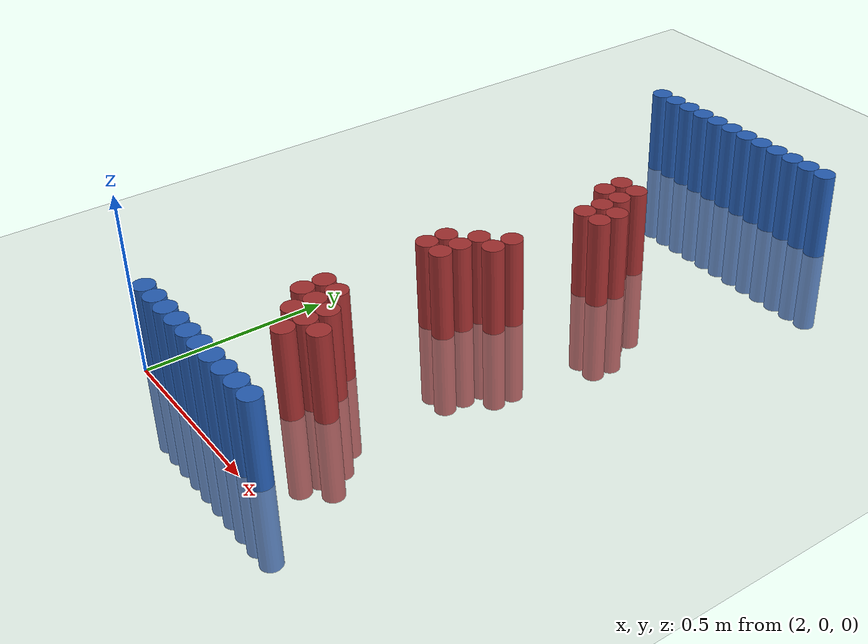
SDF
<sdf version="1.6">
 <world name="default">
  <model name="ground_plane">
   <static>1</static>
   <link name="link">
    <collision name="collision">
     <geometry><plane><normal>0 0 1</normal><size>100 100</size></plane></geometry>
     <surface><friction><ode><mu>100</mu><mu2>50</mu2></ode></friction></surface>
    </collision>
    <visual name="visual">
     <cast_shadows>0</cast_shadows>
     <geometry><plane><normal>0 0 1</normal><size>100 100</size></plane></geometry>
     <material>
      <script><uri>file://media/materials/scripts/gazebo.material</uri><name>Gazebo/Grey</name></script>
     </material>
    </visual>
   </link>
  </model>
  <model name="unit_cylinder_92">
   <static>1</static>
   <pose>1.950000 1.770000 0.000000 0.000000 0.000000 0.000000</pose>
   <link name="link">
    <inertial>
     <mass>1</mass>
     <inertia><ixx>0.145833</ixx><ixy>0</ixy><ixz>0</ixz><iyy>0.145833</iyy><iyz>0</iyz><izz>0.125</izz></inertia>
    </inertial>
    <collision name="collision">
     <geometry><cylinder><radius>0.030000</radius><length>0.5</length></cylinder></geometry>
    </collision>
    <visual name="visual">
     <geometry><cylinder><radius>0.030000</radius><length>0.5</length></cylinder></geometry>
     <material>
      <ambient>0.152000 0.379000 0.720000 1</ambient>
      <diffuse>0.152000 0.379000 0.720000 1</diffuse>
     </material>
     <material>
      <script><name>Gazebo/Grey</name><uri>file://media/materials/scripts/gazebo.material</uri></script>
     </material>
    </visual>
   </link>
  </model>
  <model name="unit_cylinder_93">
   <static>1</static>
   <pose>2.010000 0.030000 0.000000 0.000000 0.000000 0.000000</pose>
   <link name="link">
    <inertial>
     <mass>1</mass>
     <inertia><ixx>0.145833</ixx><ixy>0</ixy><ixz>0</ixz><iyy>0.145833</iyy><iyz>0</iyz><izz>0.125</izz></inertia>
    </inertial>
    <collision name="collision">
     <geometry><cylinder><radius>0.030000</radius><length>0.5</length></cylinder></geometry>
    </collision>
    <visual name="visual">
     <geometry><cylinder><radius>0.030000</radius><length>0.5</length></cylinder></geometry>
     <material>
      <ambient>0.152000 0.379000 0.720000 1</ambient>
      <diffuse>0.152000 0.379000 0.720000 1</diffuse>
     </material>
     <material>
      <script><name>Gazebo/Grey</name><uri>file://media/materials/scripts/gazebo.material</uri></script>
     </material>
    </visual>
   </link>
  </model>
  <model name="unit_cylinder_94">
   <static>1</static>
   <pose>2.010000 1.770000 0.000000 0.000000 0.000000 0.000000</pose>
   <link name="link">
    <inertial>
     <mass>1</mass>
     <inertia><ixx>0.145833</ixx><ixy>0</ixy><ixz>0</ixz><iyy>0.145833</iyy><iyz>0</iyz><izz>0.125</izz></inertia>
    </inertial>
    <collision name="collision">
     <geometry><cylinder><radius>0.030000</radius><length>0.5</length></cylinder></geometry>
    </collision>
    <visual name="visual">
     <geometry><cylinder><radius>0.030000</radius><length>0.5</length></cylinder></geometry>
     <material>
      <ambient>0.152000 0.379000 0.720000 1</ambient>
      <diffuse>0.152000 0.379000 0.720000 1</diffuse>
     </material>
     <material>
      <script><name>Gazebo/Grey</name><uri>file://media/materials/scripts/gazebo.material</uri></script>
     </material>
    </visual>
   </link>
  </model>
  <model name="unit_cylinder_95">
   <static>1</static>
   <pose>2.070000 1.770000 0.000000 0.000000 0.000000 0.000000</pose>
   <link name="link">
    <inertial>
     <mass>1</mass>
     <inertia><ixx>0.145833</ixx><ixy>0</ixy><ixz>0</ixz><iyy>0.145833</iyy><iyz>0</iyz><izz>0.125</izz></inertia>
    </inertial>
    <collision name="collision">
     <geometry><cylinder><radius>0.030000</radius><length>0.5</length></cylinder></geometry>
    </collision>
    <visual name="visual">
     <geometry><cylinder><radius>0.030000</radius><length>0.5</length></cylinder></geometry>
     <material>
      <ambient>0.152000 0.379000 0.720000 1</ambient>
      <diffuse>0.152000 0.379000 0.720000 1</diffuse>
     </material>
     <material>
      <script><name>Gazebo/Grey</name><uri>file://media/materials/scripts/gazebo.material</uri></script>
     </material>
    </visual>
   </link>
  </model>
  <model name="unit_cylinder_96">
   <static>1</static>
   <pose>2.130000 1.770000 0.000000 0.000000 0.000000 0.000000</pose>
   <link name="link">
    <inertial>
     <mass>1</mass>
     <inertia><ixx>0.145833</ixx><ixy>0</ixy><ixz>0</ixz><iyy>0.145833</iyy><iyz>0</iyz><izz>0.125</izz></inertia>
    </inertial>
    <collision name="collision">
     <geometry><cylinder><radius>0.030000</radius><length>0.5</length></cylinder></geometry>
    </collision>
    <visual name="visual">
     <geometry><cylinder><radius>0.030000</radius><length>0.5</length></cylinder></geometry>
     <material>
      <ambient>0.152000 0.379000 0.720000 1</ambient>
      <diffuse>0.152000 0.379000 0.720000 1</diffuse>
     </material>
     <material>
      <script><name>Gazebo/Grey</name><uri>file://media/materials/scripts/gazebo.material</uri></script>
     </material>
    </visual>
   </link>
  </model>
  <model name="unit_cylinder_97">
   <static>1</static>
   <pose>2.190000 1.770000 0.000000 0.000000 0.000000 0.000000</pose>
   <link name="link">
    <inertial>
     <mass>1</mass>
     <inertia><ixx>0.145833</ixx><ixy>0</ixy><ixz>0</ixz><iyy>0.145833</iyy><iyz>0</iyz><izz>0.125</izz></inertia>
    </inertial>
    <collision name="collision">
     <geometry><cylinder><radius>0.030000</radius><length>0.5</length></cylinder></geometry>
    </collision>
    <visual name="visual">
     <geometry><cylinder><radius>0.030000</radius><length>0.5</length></cylinder></geometry>
     <material>
      <ambient>0.152000 0.379000 0.720000 1</ambient>
      <diffuse>0.152000 0.379000 0.720000 1</diffuse>
     </material>
     <material>
      <script><name>Gazebo/Grey</name><uri>file://media/materials/scripts/gazebo.material</uri></script>
     </material>
    </visual>
   </link>
  </model>
  <model name="unit_cylinder_98">
   <static>1</static>
   <pose>2.250000 1.770000 0.000000 0.000000 0.000000 0.000000</pose>
   <link name="link">
    <inertial>
     <mass>1</mass>
     <inertia><ixx>0.145833</ixx><ixy>0</ixy><ixz>0</ixz><iyy>0.145833</iyy><iyz>0</iyz><izz>0.125</izz></inertia>
    </inertial>
    <collision name="collision">
     <geometry><cylinder><radius>0.030000</radius><length>0.5</length></cylinder></geometry>
    </collision>
    <visual name="visual">
     <geometry><cylinder><radius>0.030000</radius><length>0.5</length></cylinder></geometry>
     <material>
      <ambient>0.152000 0.379000 0.720000 1</ambient>
      <diffuse>0.152000 0.379000 0.720000 1</diffuse>
     </material>
     <material>
      <script><name>Gazebo/Grey</name><uri>file://media/materials/scripts/gazebo.material</uri></script>
     </material>
    </visual>
   </link>
  </model>
  <model name="unit_cylinder_99">
   <static>1</static>
   <pose>2.310000 1.770000 0.000000 0.000000 0.000000 0.000000</pose>
   <link name="link">
    <inertial>
     <mass>1</mass>
     <inertia><ixx>0.145833</ixx><ixy>0</ixy><ixz>0</ixz><iyy>0.145833</iyy><iyz>0</iyz><izz>0.125</izz></inertia>
    </inertial>
    <collision name="collision">
     <geometry><cylinder><radius>0.030000</radius><length>0.5</length></cylinder></geometry>
    </collision>
    <visual name="visual">
     <geometry><cylinder><radius>0.030000</radius><length>0.5</length></cylinder></geometry>
     <material>
      <ambient>0.152000 0.379000 0.720000 1</ambient>
      <diffuse>0.152000 0.379000 0.720000 1</diffuse>
     </material>
     <material>
      <script><name>Gazebo/Grey</name><uri>file://media/materials/scripts/gazebo.material</uri></script>
     </material>
    </visual>
   </link>
  </model>
  <model name="unit_cylinder_100">
   <static>1</static>
   <pose>2.370000 1.770000 0.000000 0.000000 0.000000 0.000000</pose>
   <link name="link">
    <inertial>
     <mass>1</mass>
     <inertia><ixx>0.145833</ixx><ixy>0</ixy><ixz>0</ixz><iyy>0.145833</iyy><iyz>0</iyz><izz>0.125</izz></inertia>
    </inertial>
    <collision name="collision">
     <geometry><cylinder><radius>0.030000</radius><length>0.5</length></cylinder></geometry>
    </collision>
    <visual name="visual">
     <geometry><cylinder><radius>0.030000</radius><length>0.5</length></cylinder></geometry>
     <material>
      <ambient>0.152000 0.379000 0.720000 1</ambient>
      <diffuse>0.152000 0.379000 0.720000 1</diffuse>
     </material>
     <material>
      <script><name>Gazebo/Grey</name><uri>file://media/materials/scripts/gazebo.material</uri></script>
     </material>
    </visual>
   </link>
  </model>
  <model name="unit_cylinder_101">
   <static>1</static>
   <pose>2.430000 1.770000 0.000000 0.000000 0.000000 0.000000</pose>
   <link name="link">
    <inertial>
     <mass>1</mass>
     <inertia><ixx>0.145833</ixx><ixy>0</ixy><ixz>0</ixz><iyy>0.145833</iyy><iyz>0</iyz><izz>0.125</izz></inertia>
    </inertial>
    <collision name="collision">
     <geometry><cylinder><radius>0.030000</radius><length>0.5</length></cylinder></geometry>
    </collision>
    <visual name="visual">
     <geometry><cylinder><radius>0.030000</radius><length>0.5</length></cylinder></geometry>
     <material>
      <ambient>0.152000 0.379000 0.720000 1</ambient>
      <diffuse>0.152000 0.379000 0.720000 1</diffuse>
     </material>
     <material>
      <script><name>Gazebo/Grey</name><uri>file://media/materials/scripts/gazebo.material</uri></script>
     </material>
    </visual>
   </link>
  </model>
  <model name="unit_cylinder_102">
   <static>1</static>
   <pose>2.490000 1.770000 0.000000 0.000000 0.000000 0.000000</pose>
   <link name="link">
    <inertial>
     <mass>1</mass>
     <inertia><ixx>0.145833</ixx><ixy>0</ixy><ixz>0</ixz><iyy>0.145833</iyy><iyz>0</iyz><izz>0.125</izz></inertia>
    </inertial>
    <collision name="collision">
     <geometry><cylinder><radius>0.030000</radius><length>0.5</length></cylinder></geometry>
    </collision>
    <visual name="visual">
     <geometry><cylinder><radius>0.030000</radius><length>0.5</length></cylinder></geometry>
     <material>
      <ambient>0.152000 0.379000 0.720000 1</ambient>
      <diffuse>0.152000 0.379000 0.720000 1</diffuse>
     </material>
     <material>
      <script><name>Gazebo/Grey</name><uri>file://media/materials/scripts/gazebo.material</uri></script>
     </material>
    </visual>
   </link>
  </model>
  <model name="unit_cylinder_103">
   <static>1</static>
   <pose>2.550000 1.770000 0.000000 0.000000 0.000000 0.000000</pose>
   <link name="link">
    <inertial>
     <mass>1</mass>
     <inertia><ixx>0.145833</ixx><ixy>0</ixy><ixz>0</ixz><iyy>0.145833</iyy><iyz>0</iyz><izz>0.125</izz></inertia>
    </inertial>
    <collision name="collision">
     <geometry><cylinder><radius>0.030000</radius><length>0.5</length></cylinder></geometry>
    </collision>
    <visual name="visual">
     <geometry><cylinder><radius>0.030000</radius><length>0.5</length></cylinder></geometry>
     <material>
      <ambient>0.152000 0.379000 0.720000 1</ambient>
      <diffuse>0.152000 0.379000 0.720000 1</diffuse>
     </material>
     <material>
      <script><name>Gazebo/Grey</name><uri>file://media/materials/scripts/gazebo.material</uri></script>
     </material>
    </visual>
   </link>
  </model>
  <model name="unit_cylinder_104">
   <static>1</static>
   <pose>2.610000 1.770000 0.000000 0.000000 0.000000 0.000000</pose>
   <link name="link">
    <inertial>
     <mass>1</mass>
     <inertia><ixx>0.145833</ixx><ixy>0</ixy><ixz>0</ixz><iyy>0.145833</iyy><iyz>0</iyz><izz>0.125</izz></inertia>
    </inertial>
    <collision name="collision">
     <geometry><cylinder><radius>0.030000</radius><length>0.5</length></cylinder></geometry>
    </collision>
    <visual name="visual">
     <geometry><cylinder><radius>0.030000</radius><length>0.5</length></cylinder></geometry>
     <material>
      <ambient>0.152000 0.379000 0.720000 1</ambient>
      <diffuse>0.152000 0.379000 0.720000 1</diffuse>
     </material>
     <material>
      <script><name>Gazebo/Grey</name><uri>file://media/materials/scripts/gazebo.material</uri></script>
     </material>
    </visual>
   </link>
  </model>
  <model name="unit_cylinder_134">
   <static>1</static>
   <pose>2.310000 1.290000 0.000000 0.000000 0.000000 0.000000</pose>
   <link name="link">
    <inertial>
     <mass>1</mass>
     <inertia><ixx>0.145833</ixx><ixy>0</ixy><ixz>0</ixz><iyy>0.145833</iyy><iyz>0</iyz><izz>0.125</izz></inertia>
    </inertial>
    <collision name="collision">
     <geometry><cylinder><radius>0.030000</radius><length>0.5</length></cylinder></geometry>
    </collision>
    <visual name="visual">
     <geometry><cylinder><radius>0.030000</radius><length>0.5</length></cylinder></geometry>
     <material>
      <ambient>0.648000 0.192000 0.192000 1</ambient>
      <diffuse>0.648000 0.192000 0.192000 1</diffuse>
     </material>
     <material>
      <script><name>Gazebo/Grey</name><uri>file://media/materials/scripts/gazebo.material</uri></script>
     </material>
    </visual>
   </link>
  </model>
  <model name="unit_cylinder_135">
   <static>1</static>
   <pose>2.370000 1.290000 0.000000 0.000000 0.000000 0.000000</pose>
   <link name="link">
    <inertial>
     <mass>1</mass>
     <inertia><ixx>0.145833</ixx><ixy>0</ixy><ixz>0</ixz><iyy>0.145833</iyy><iyz>0</iyz><izz>0.125</izz></inertia>
    </inertial>
    <collision name="collision">
     <geometry><cylinder><radius>0.030000</radius><length>0.5</length></cylinder></geometry>
    </collision>
    <visual name="visual">
     <geometry><cylinder><radius>0.030000</radius><length>0.5</length></cylinder></geometry>
     <material>
      <ambient>0.648000 0.192000 0.192000 1</ambient>
      <diffuse>0.648000 0.192000 0.192000 1</diffuse>
     </material>
     <material>
      <script><name>Gazebo/Grey</name><uri>file://media/materials/scripts/gazebo.material</uri></script>
     </material>
    </visual>
   </link>
  </model>
  <model name="unit_cylinder_136">
   <static>1</static>
   <pose>2.310000 1.230000 0.000000 0.000000 0.000000 0.000000</pose>
   <link name="link">
    <inertial>
     <mass>1</mass>
     <inertia><ixx>0.145833</ixx><ixy>0</ixy><ixz>0</ixz><iyy>0.145833</iyy><iyz>0</iyz><izz>0.125</izz></inertia>
    </inertial>
    <collision name="collision">
     <geometry><cylinder><radius>0.030000</radius><length>0.5</length></cylinder></geometry>
    </collision>
    <visual name="visual">
     <geometry><cylinder><radius>0.030000</radius><length>0.5</length></cylinder></geometry>
     <material>
      <ambient>0.648000 0.192000 0.192000 1</ambient>
      <diffuse>0.648000 0.192000 0.192000 1</diffuse>
     </material>
     <material>
      <script><name>Gazebo/Grey</name><uri>file://media/materials/scripts/gazebo.material</uri></script>
     </material>
    </visual>
   </link>
  </model>
  <model name="unit_cylinder_137">
   <static>1</static>
   <pose>2.370000 1.230000 0.000000 0.000000 0.000000 0.000000</pose>
   <link name="link">
    <inertial>
     <mass>1</mass>
     <inertia><ixx>0.145833</ixx><ixy>0</ixy><ixz>0</ixz><iyy>0.145833</iyy><iyz>0</iyz><izz>0.125</izz></inertia>
    </inertial>
    <collision name="collision">
     <geometry><cylinder><radius>0.030000</radius><length>0.5</length></cylinder></geometry>
    </collision>
    <visual name="visual">
     <geometry><cylinder><radius>0.030000</radius><length>0.5</length></cylinder></geometry>
     <material>
      <ambient>0.648000 0.192000 0.192000 1</ambient>
      <diffuse>0.648000 0.192000 0.192000 1</diffuse>
     </material>
     <material>
      <script><name>Gazebo/Grey</name><uri>file://media/materials/scripts/gazebo.material</uri></script>
     </material>
    </visual>
   </link>
  </model>
  <model name="unit_cylinder_138">
   <static>1</static>
   <pose>2.370000 1.170000 0.000000 0.000000 0.000000 0.000000</pose>
   <link name="link">
    <inertial>
     <mass>1</mass>
     <inertia><ixx>0.145833</ixx><ixy>0</ixy><ixz>0</ixz><iyy>0.145833</iyy><iyz>0</iyz><izz>0.125</izz></inertia>
    </inertial>
    <collision name="collision">
     <geometry><cylinder><radius>0.030000</radius><length>0.5</length></cylinder></geometry>
    </collision>
    <visual name="visual">
     <geometry><cylinder><radius>0.030000</radius><length>0.5</length></cylinder></geometry>
     <material>
      <ambient>0.648000 0.192000 0.192000 1</ambient>
      <diffuse>0.648000 0.192000 0.192000 1</diffuse>
     </material>
     <material>
      <script><name>Gazebo/Grey</name><uri>file://media/materials/scripts/gazebo.material</uri></script>
     </material>
    </visual>
   </link>
  </model>
  <model name="unit_cylinder_139">
   <static>1</static>
   <pose>2.430000 1.170000 0.000000 0.000000 0.000000 0.000000</pose>
   <link name="link">
    <inertial>
     <mass>1</mass>
     <inertia><ixx>0.145833</ixx><ixy>0</ixy><ixz>0</ixz><iyy>0.145833</iyy><iyz>0</iyz><izz>0.125</izz></inertia>
    </inertial>
    <collision name="collision">
     <geometry><cylinder><radius>0.030000</radius><length>0.5</length></cylinder></geometry>
    </collision>
    <visual name="visual">
     <geometry><cylinder><radius>0.030000</radius><length>0.5</length></cylinder></geometry>
     <material>
      <ambient>0.648000 0.192000 0.192000 1</ambient>
      <diffuse>0.648000 0.192000 0.192000 1</diffuse>
     </material>
     <material>
      <script><name>Gazebo/Grey</name><uri>file://media/materials/scripts/gazebo.material</uri></script>
     </material>
    </visual>
   </link>
  </model>
  <model name="unit_cylinder_140">
   <static>1</static>
   <pose>2.370000 1.110000 0.000000 0.000000 0.000000 0.000000</pose>
   <link name="link">
    <inertial>
     <mass>1</mass>
     <inertia><ixx>0.145833</ixx><ixy>0</ixy><ixz>0</ixz><iyy>0.145833</iyy><iyz>0</iyz><izz>0.125</izz></inertia>
    </inertial>
    <collision name="collision">
     <geometry><cylinder><radius>0.030000</radius><length>0.5</length></cylinder></geometry>
    </collision>
    <visual name="visual">
     <geometry><cylinder><radius>0.030000</radius><length>0.5</length></cylinder></geometry>
     <material>
      <ambient>0.648000 0.192000 0.192000 1</ambient>
      <diffuse>0.648000 0.192000 0.192000 1</diffuse>
     </material>
     <material>
      <script><name>Gazebo/Grey</name><uri>file://media/materials/scripts/gazebo.material</uri></script>
     </material>
    </visual>
   </link>
  </model>
  <model name="unit_cylinder_141">
   <static>1</static>
   <pose>2.430000 1.110000 0.000000 0.000000 0.000000 0.000000</pose>
   <link name="link">
    <inertial>
     <mass>1</mass>
     <inertia><ixx>0.145833</ixx><ixy>0</ixy><ixz>0</ixz><iyy>0.145833</iyy><iyz>0</iyz><izz>0.125</izz></inertia>
    </inertial>
    <collision name="collision">
     <geometry><cylinder><radius>0.030000</radius><length>0.5</length></cylinder></geometry>
    </collision>
    <visual name="visual">
     <geometry><cylinder><radius>0.030000</radius><length>0.5</length></cylinder></geometry>
     <material>
      <ambient>0.648000 0.192000 0.192000 1</ambient>
      <diffuse>0.648000 0.192000 0.192000 1</diffuse>
     </material>
     <material>
      <script><name>Gazebo/Grey</name><uri>file://media/materials/scripts/gazebo.material</uri></script>
     </material>
    </visual>
   </link>
  </model>
  <model name="unit_cylinder_145">
   <static>1</static>
   <pose>2.370000 0.870000 0.000000 0.000000 0.000000 0.000000</pose>
   <link name="link">
    <inertial>
     <mass>1</mass>
     <inertia><ixx>0.145833</ixx><ixy>0</ixy><ixz>0</ixz><iyy>0.145833</iyy><iyz>0</iyz><izz>0.125</izz></inertia>
    </inertial>
    <collision name="collision">
     <geometry><cylinder><radius>0.030000</radius><length>0.5</length></cylinder></geometry>
    </collision>
    <visual name="visual">
     <geometry><cylinder><radius>0.030000</radius><length>0.5</length></cylinder></geometry>
     <material>
      <ambient>0.648000 0.192000 0.192000 1</ambient>
      <diffuse>0.648000 0.192000 0.192000 1</diffuse>
     </material>
     <material>
      <script><name>Gazebo/Grey</name><uri>file://media/materials/scripts/gazebo.material</uri></script>
     </material>
    </visual>
   </link>
  </model>
  <model name="unit_cylinder_149">
   <static>1</static>
   <pose>2.310000 0.810000 0.000000 0.000000 0.000000 0.000000</pose>
   <link name="link">
    <inertial>
     <mass>1</mass>
     <inertia><ixx>0.145833</ixx><ixy>0</ixy><ixz>0</ixz><iyy>0.145833</iyy><iyz>0</iyz><izz>0.125</izz></inertia>
    </inertial>
    <collision name="collision">
     <geometry><cylinder><radius>0.030000</radius><length>0.5</length></cylinder></geometry>
    </collision>
    <visual name="visual">
     <geometry><cylinder><radius>0.030000</radius><length>0.5</length></cylinder></geometry>
     <material>
      <ambient>0.648000 0.192000 0.192000 1</ambient>
      <diffuse>0.648000 0.192000 0.192000 1</diffuse>
     </material>
     <material>
      <script><name>Gazebo/Grey</name><uri>file://media/materials/scripts/gazebo.material</uri></script>
     </material>
    </visual>
   </link>
  </model>
  <model name="unit_cylinder_150">
   <static>1</static>
   <pose>2.370000 0.810000 0.000000 0.000000 0.000000 0.000000</pose>
   <link name="link">
    <inertial>
     <mass>1</mass>
     <inertia><ixx>0.145833</ixx><ixy>0</ixy><ixz>0</ixz><iyy>0.145833</iyy><iyz>0</iyz><izz>0.125</izz></inertia>
    </inertial>
    <collision name="collision">
     <geometry><cylinder><radius>0.030000</radius><length>0.5</length></cylinder></geometry>
    </collision>
    <visual name="visual">
     <geometry><cylinder><radius>0.030000</radius><length>0.5</length></cylinder></geometry>
     <material>
      <ambient>0.648000 0.192000 0.192000 1</ambient>
      <diffuse>0.648000 0.192000 0.192000 1</diffuse>
     </material>
     <material>
      <script><name>Gazebo/Grey</name><uri>file://media/materials/scripts/gazebo.material</uri></script>
     </material>
    </visual>
   </link>
  </model>
  <model name="unit_cylinder_152">
   <static>1</static>
   <pose>2.250000 0.750000 0.000000 0.000000 0.000000 0.000000</pose>
   <link name="link">
    <inertial>
     <mass>1</mass>
     <inertia><ixx>0.145833</ixx><ixy>0</ixy><ixz>0</ixz><iyy>0.145833</iyy><iyz>0</iyz><izz>0.125</izz></inertia>
    </inertial>
    <collision name="collision">
     <geometry><cylinder><radius>0.030000</radius><length>0.5</length></cylinder></geometry>
    </collision>
    <visual name="visual">
     <geometry><cylinder><radius>0.030000</radius><length>0.5</length></cylinder></geometry>
     <material>
      <ambient>0.648000 0.192000 0.192000 1</ambient>
      <diffuse>0.648000 0.192000 0.192000 1</diffuse>
     </material>
     <material>
      <script><name>Gazebo/Grey</name><uri>file://media/materials/scripts/gazebo.material</uri></script>
     </material>
    </visual>
   </link>
  </model>
  <model name="unit_cylinder_153">
   <static>1</static>
   <pose>2.310000 0.750000 0.000000 0.000000 0.000000 0.000000</pose>
   <link name="link">
    <inertial>
     <mass>1</mass>
     <inertia><ixx>0.145833</ixx><ixy>0</ixy><ixz>0</ixz><iyy>0.145833</iyy><iyz>0</iyz><izz>0.125</izz></inertia>
    </inertial>
    <collision name="collision">
     <geometry><cylinder><radius>0.030000</radius><length>0.5</length></cylinder></geometry>
    </collision>
    <visual name="visual">
     <geometry><cylinder><radius>0.030000</radius><length>0.5</length></cylinder></geometry>
     <material>
      <ambient>0.648000 0.192000 0.192000 1</ambient>
      <diffuse>0.648000 0.192000 0.192000 1</diffuse>
     </material>
     <material>
      <script><name>Gazebo/Grey</name><uri>file://media/materials/scripts/gazebo.material</uri></script>
     </material>
    </visual>
   </link>
  </model>
  <model name="unit_cylinder_155">
   <static>1</static>
   <pose>2.250000 0.690000 0.000000 0.000000 0.000000 0.000000</pose>
   <link name="link">
    <inertial>
     <mass>1</mass>
     <inertia><ixx>0.145833</ixx><ixy>0</ixy><ixz>0</ixz><iyy>0.145833</iyy><iyz>0</iyz><izz>0.125</izz></inertia>
    </inertial>
    <collision name="collision">
     <geometry><cylinder><radius>0.030000</radius><length>0.5</length></cylinder></geometry>
    </collision>
    <visual name="visual">
     <geometry><cylinder><radius>0.030000</radius><length>0.5</length></cylinder></geometry>
     <material>
      <ambient>0.648000 0.192000 0.192000 1</ambient>
      <diffuse>0.648000 0.192000 0.192000 1</diffuse>
     </material>
     <material>
      <script><name>Gazebo/Grey</name><uri>file://media/materials/scripts/gazebo.material</uri></script>
     </material>
    </visual>
   </link>
  </model>
  <model name="unit_cylinder_156">
   <static>1</static>
   <pose>2.310000 0.690000 0.000000 0.000000 0.000000 0.000000</pose>
   <link name="link">
    <inertial>
     <mass>1</mass>
     <inertia><ixx>0.145833</ixx><ixy>0</ixy><ixz>0</ixz><iyy>0.145833</iyy><iyz>0</iyz><izz>0.125</izz></inertia>
    </inertial>
    <collision name="collision">
     <geometry><cylinder><radius>0.030000</radius><length>0.5</length></cylinder></geometry>
    </collision>
    <visual name="visual">
     <geometry><cylinder><radius>0.030000</radius><length>0.5</length></cylinder></geometry>
     <material>
      <ambient>0.648000 0.192000 0.192000 1</ambient>
      <diffuse>0.648000 0.192000 0.192000 1</diffuse>
     </material>
     <material>
      <script><name>Gazebo/Grey</name><uri>file://media/materials/scripts/gazebo.material</uri></script>
     </material>
    </visual>
   </link>
  </model>
  <model name="unit_cylinder_172">
   <static>1</static>
   <pose>2.250000 0.390000 0.000000 0.000000 0.000000 0.000000</pose>
   <link name="link">
    <inertial>
     <mass>1</mass>
     <inertia><ixx>0.145833</ixx><ixy>0</ixy><ixz>0</ixz><iyy>0.145833</iyy><iyz>0</iyz><izz>0.125</izz></inertia>
    </inertial>
    <collision name="collision">
     <geometry><cylinder><radius>0.030000</radius><length>0.5</length></cylinder></geometry>
    </collision>
    <visual name="visual">
     <geometry><cylinder><radius>0.030000</radius><length>0.5</length></cylinder></geometry>
     <material>
      <ambient>0.648000 0.192000 0.192000 1</ambient>
      <diffuse>0.648000 0.192000 0.192000 1</diffuse>
     </material>
     <material>
      <script><name>Gazebo/Grey</name><uri>file://media/materials/scripts/gazebo.material</uri></script>
     </material>
    </visual>
   </link>
  </model>
  <model name="unit_cylinder_173">
   <static>1</static>
   <pose>2.310000 0.390000 0.000000 0.000000 0.000000 0.000000</pose>
   <link name="link">
    <inertial>
     <mass>1</mass>
     <inertia><ixx>0.145833</ixx><ixy>0</ixy><ixz>0</ixz><iyy>0.145833</iyy><iyz>0</iyz><izz>0.125</izz></inertia>
    </inertial>
    <collision name="collision">
     <geometry><cylinder><radius>0.030000</radius><length>0.5</length></cylinder></geometry>
    </collision>
    <visual name="visual">
     <geometry><cylinder><radius>0.030000</radius><length>0.5</length></cylinder></geometry>
     <material>
      <ambient>0.648000 0.192000 0.192000 1</ambient>
      <diffuse>0.648000 0.192000 0.192000 1</diffuse>
     </material>
     <material>
      <script><name>Gazebo/Grey</name><uri>file://media/materials/scripts/gazebo.material</uri></script>
     </material>
    </visual>
   </link>
  </model>
  <model name="unit_cylinder_176">
   <static>1</static>
   <pose>2.250000 0.330000 0.000000 0.000000 0.000000 0.000000</pose>
   <link name="link">
    <inertial>
     <mass>1</mass>
     <inertia><ixx>0.145833</ixx><ixy>0</ixy><ixz>0</ixz><iyy>0.145833</iyy><iyz>0</iyz><izz>0.125</izz></inertia>
    </inertial>
    <collision name="collision">
     <geometry><cylinder><radius>0.030000</radius><length>0.5</length></cylinder></geometry>
    </collision>
    <visual name="visual">
     <geometry><cylinder><radius>0.030000</radius><length>0.5</length></cylinder></geometry>
     <material>
      <ambient>0.648000 0.192000 0.192000 1</ambient>
      <diffuse>0.648000 0.192000 0.192000 1</diffuse>
     </material>
     <material>
      <script><name>Gazebo/Grey</name><uri>file://media/materials/scripts/gazebo.material</uri></script>
     </material>
    </visual>
   </link>
  </model>
  <model name="unit_cylinder_177">
   <static>1</static>
   <pose>2.310000 0.330000 0.000000 0.000000 0.000000 0.000000</pose>
   <link name="link">
    <inertial>
     <mass>1</mass>
     <inertia><ixx>0.145833</ixx><ixy>0</ixy><ixz>0</ixz><iyy>0.145833</iyy><iyz>0</iyz><izz>0.125</izz></inertia>
    </inertial>
    <collision name="collision">
     <geometry><cylinder><radius>0.030000</radius><length>0.5</length></cylinder></geometry>
    </collision>
    <visual name="visual">
     <geometry><cylinder><radius>0.030000</radius><length>0.5</length></cylinder></geometry>
     <material>
      <ambient>0.648000 0.192000 0.192000 1</ambient>
      <diffuse>0.648000 0.192000 0.192000 1</diffuse>
     </material>
     <material>
      <script><name>Gazebo/Grey</name><uri>file://media/materials/scripts/gazebo.material</uri></script>
     </material>
    </visual>
   </link>
  </model>
  <model name="unit_cylinder_178">
   <static>1</static>
   <pose>2.370000 0.330000 0.000000 0.000000 0.000000 0.000000</pose>
   <link name="link">
    <inertial>
     <mass>1</mass>
     <inertia><ixx>0.145833</ixx><ixy>0</ixy><ixz>0</ixz><iyy>0.145833</iyy><iyz>0</iyz><izz>0.125</izz></inertia>
    </inertial>
    <collision name="collision">
     <geometry><cylinder><radius>0.030000</radius><length>0.5</length></cylinder></geometry>
    </collision>
    <visual name="visual">
     <geometry><cylinder><radius>0.030000</radius><length>0.5</length></cylinder></geometry>
     <material>
      <ambient>0.648000 0.192000 0.192000 1</ambient>
      <diffuse>0.648000 0.192000 0.192000 1</diffuse>
     </material>
     <material>
      <script><name>Gazebo/Grey</name><uri>file://media/materials/scripts/gazebo.material</uri></script>
     </material>
    </visual>
   </link>
  </model>
  <model name="unit_cylinder_179">
   <static>1</static>
   <pose>2.310000 0.270000 0.000000 0.000000 0.000000 0.000000</pose>
   <link name="link">
    <inertial>
     <mass>1</mass>
     <inertia><ixx>0.145833</ixx><ixy>0</ixy><ixz>0</ixz><iyy>0.145833</iyy><iyz>0</iyz><izz>0.125</izz></inertia>
    </inertial>
    <collision name="collision">
     <geometry><cylinder><radius>0.030000</radius><length>0.5</length></cylinder></geometry>
    </collision>
    <visual name="visual">
     <geometry><cylinder><radius>0.030000</radius><length>0.5</length></cylinder></geometry>
     <material>
      <ambient>0.648000 0.192000 0.192000 1</ambient>
      <diffuse>0.648000 0.192000 0.192000 1</diffuse>
     </material>
     <material>
      <script><name>Gazebo/Grey</name><uri>file://media/materials/scripts/gazebo.material</uri></script>
     </material>
    </visual>
   </link>
  </model>
  <model name="unit_cylinder_180">
   <static>1</static>
   <pose>2.370000 0.270000 0.000000 0.000000 0.000000 0.000000</pose>
   <link name="link">
    <inertial>
     <mass>1</mass>
     <inertia><ixx>0.145833</ixx><ixy>0</ixy><ixz>0</ixz><iyy>0.145833</iyy><iyz>0</iyz><izz>0.125</izz></inertia>
    </inertial>
    <collision name="collision">
     <geometry><cylinder><radius>0.030000</radius><length>0.5</length></cylinder></geometry>
    </collision>
    <visual name="visual">
     <geometry><cylinder><radius>0.030000</radius><length>0.5</length></cylinder></geometry>
     <material>
      <ambient>0.648000 0.192000 0.192000 1</ambient>
      <diffuse>0.648000 0.192000 0.192000 1</diffuse>
     </material>
     <material>
      <script><name>Gazebo/Grey</name><uri>file://media/materials/scripts/gazebo.material</uri></script>
     </material>
    </visual>
   </link>
  </model>
  <model name="unit_cylinder_181">
   <static>1</static>
   <pose>2.430000 0.270000 0.000000 0.000000 0.000000 0.000000</pose>
   <link name="link">
    <inertial>
     <mass>1</mass>
     <inertia><ixx>0.145833</ixx><ixy>0</ixy><ixz>0</ixz><iyy>0.145833</iyy><iyz>0</iyz><izz>0.125</izz></inertia>
    </inertial>
    <collision name="collision">
     <geometry><cylinder><radius>0.030000</radius><length>0.5</length></cylinder></geometry>
    </collision>
    <visual name="visual">
     <geometry><cylinder><radius>0.030000</radius><length>0.5</length></cylinder></geometry>
     <material>
      <ambient>0.648000 0.192000 0.192000 1</ambient>
      <diffuse>0.648000 0.192000 0.192000 1</diffuse>
     </material>
     <material>
      <script><name>Gazebo/Grey</name><uri>file://media/materials/scripts/gazebo.material</uri></script>
     </material>
    </visual>
   </link>
  </model>
  <model name="unit_cylinder_184">
   <static>1</static>
   <pose>2.370000 0.210000 0.000000 0.000000 0.000000 0.000000</pose>
   <link name="link">
    <inertial>
     <mass>1</mass>
     <inertia><ixx>0.145833</ixx><ixy>0</ixy><ixz>0</ixz><iyy>0.145833</iyy><iyz>0</iyz><izz>0.125</izz></inertia>
    </inertial>
    <collision name="collision">
     <geometry><cylinder><radius>0.030000</radius><length>0.5</length></cylinder></geometry>
    </collision>
    <visual name="visual">
     <geometry><cylinder><radius>0.030000</radius><length>0.5</length></cylinder></geometry>
     <material>
      <ambient>0.648000 0.192000 0.192000 1</ambient>
      <diffuse>0.648000 0.192000 0.192000 1</diffuse>
     </material>
     <material>
      <script><name>Gazebo/Grey</name><uri>file://media/materials/scripts/gazebo.material</uri></script>
     </material>
    </visual>
   </link>
  </model>
  <model name="unit_cylinder_199">
   <static>1</static>
   <pose>2.070000 0.030000 0.000000 0.000000 0.000000 0.000000</pose>
   <link name="link">
    <inertial>
     <mass>1</mass>
     <inertia><ixx>0.145833</ixx><ixy>0</ixy><ixz>0</ixz><iyy>0.145833</iyy><iyz>0</iyz><izz>0.125</izz></inertia>
    </inertial>
    <collision name="collision">
     <geometry><cylinder><radius>0.030000</radius><length>0.5</length></cylinder></geometry>
    </collision>
    <visual name="visual">
     <geometry><cylinder><radius>0.030000</radius><length>0.5</length></cylinder></geometry>
     <material>
      <ambient>0.152000 0.379000 0.720000 1</ambient>
      <diffuse>0.152000 0.379000 0.720000 1</diffuse>
     </material>
     <material>
      <script><name>Gazebo/Grey</name><uri>file://media/materials/scripts/gazebo.material</uri></script>
     </material>
    </visual>
   </link>
  </model>
  <model name="unit_cylinder_200">
   <static>1</static>
   <pose>2.130000 0.030000 0.000000 0.000000 0.000000 0.000000</pose>
   <link name="link">
    <inertial>
     <mass>1</mass>
     <inertia><ixx>0.145833</ixx><ixy>0</ixy><ixz>0</ixz><iyy>0.145833</iyy><iyz>0</iyz><izz>0.125</izz></inertia>
    </inertial>
    <collision name="collision">
     <geometry><cylinder><radius>0.030000</radius><length>0.5</length></cylinder></geometry>
    </collision>
    <visual name="visual">
     <geometry><cylinder><radius>0.030000</radius><length>0.5</length></cylinder></geometry>
     <material>
      <ambient>0.152000 0.379000 0.720000 1</ambient>
      <diffuse>0.152000 0.379000 0.720000 1</diffuse>
     </material>
     <material>
      <script><name>Gazebo/Grey</name><uri>file://media/materials/scripts/gazebo.material</uri></script>
     </material>
    </visual>
   </link>
  </model>
  <model name="unit_cylinder_201">
   <static>1</static>
   <pose>2.190000 0.030000 0.000000 0.000000 0.000000 0.000000</pose>
   <link name="link">
    <inertial>
     <mass>1</mass>
     <inertia><ixx>0.145833</ixx><ixy>0</ixy><ixz>0</ixz><iyy>0.145833</iyy><iyz>0</iyz><izz>0.125</izz></inertia>
    </inertial>
    <collision name="collision">
     <geometry><cylinder><radius>0.030000</radius><length>0.5</length></cylinder></geometry>
    </collision>
    <visual name="visual">
     <geometry><cylinder><radius>0.030000</radius><length>0.5</length></cylinder></geometry>
     <material>
      <ambient>0.152000 0.379000 0.720000 1</ambient>
      <diffuse>0.152000 0.379000 0.720000 1</diffuse>
     </material>
     <material>
      <script><name>Gazebo/Grey</name><uri>file://media/materials/scripts/gazebo.material</uri></script>
     </material>
    </visual>
   </link>
  </model>
  <model name="unit_cylinder_202">
   <static>1</static>
   <pose>2.250000 0.030000 0.000000 0.000000 0.000000 0.000000</pose>
   <link name="link">
    <inertial>
     <mass>1</mass>
     <inertia><ixx>0.145833</ixx><ixy>0</ixy><ixz>0</ixz><iyy>0.145833</iyy><iyz>0</iyz><izz>0.125</izz></inertia>
    </inertial>
    <collision name="collision">
     <geometry><cylinder><radius>0.030000</radius><length>0.5</length></cylinder></geometry>
    </collision>
    <visual name="visual">
     <geometry><cylinder><radius>0.030000</radius><length>0.5</length></cylinder></geometry>
     <material>
      <ambient>0.152000 0.379000 0.720000 1</ambient>
      <diffuse>0.152000 0.379000 0.720000 1</diffuse>
     </material>
     <material>
      <script><name>Gazebo/Grey</name><uri>file://media/materials/scripts/gazebo.material</uri></script>
     </material>
    </visual>
   </link>
  </model>
  <model name="unit_cylinder_203">
   <static>1</static>
   <pose>2.310000 0.030000 0.000000 0.000000 0.000000 0.000000</pose>
   <link name="link">
    <inertial>
     <mass>1</mass>
     <inertia><ixx>0.145833</ixx><ixy>0</ixy><ixz>0</ixz><iyy>0.145833</iyy><iyz>0</iyz><izz>0.125</izz></inertia>
    </inertial>
    <collision name="collision">
     <geometry><cylinder><radius>0.030000</radius><length>0.5</length></cylinder></geometry>
    </collision>
    <visual name="visual">
     <geometry><cylinder><radius>0.030000</radius><length>0.5</length></cylinder></geometry>
     <material>
      <ambient>0.152000 0.379000 0.720000 1</ambient>
      <diffuse>0.152000 0.379000 0.720000 1</diffuse>
     </material>
     <material>
      <script><name>Gazebo/Grey</name><uri>file://media/materials/scripts/gazebo.material</uri></script>
     </material>
    </visual>
   </link>
  </model>
  <model name="unit_cylinder_204">
   <static>1</static>
   <pose>2.370000 0.030000 0.000000 0.000000 0.000000 0.000000</pose>
   <link name="link">
    <inertial>
     <mass>1</mass>
     <inertia><ixx>0.145833</ixx><ixy>0</ixy><ixz>0</ixz><iyy>0.145833</iyy><iyz>0</iyz><izz>0.125</izz></inertia>
    </inertial>
    <collision name="collision">
     <geometry><cylinder><radius>0.030000</radius><length>0.5</length></cylinder></geometry>
    </collision>
    <visual name="visual">
     <geometry><cylinder><radius>0.030000</radius><length>0.5</length></cylinder></geometry>
     <material>
      <ambient>0.152000 0.379000 0.720000 1</ambient>
      <diffuse>0.152000 0.379000 0.720000 1</diffuse>
     </material>
     <material>
      <script><name>Gazebo/Grey</name><uri>file://media/materials/scripts/gazebo.material</uri></script>
     </material>
    </visual>
   </link>
  </model>
  <model name="unit_cylinder_205">
   <static>1</static>
   <pose>2.430000 0.030000 0.000000 0.000000 0.000000 0.000000</pose>
   <link name="link">
    <inertial>
     <mass>1</mass>
     <inertia><ixx>0.145833</ixx><ixy>0</ixy><ixz>0</ixz><iyy>0.145833</iyy><iyz>0</iyz><izz>0.125</izz></inertia>
    </inertial>
    <collision name="collision">
     <geometry><cylinder><radius>0.030000</radius><length>0.5</length></cylinder></geometry>
    </collision>
    <visual name="visual">
     <geometry><cylinder><radius>0.030000</radius><length>0.5</length></cylinder></geometry>
     <material>
      <ambient>0.152000 0.379000 0.720000 1</ambient>
      <diffuse>0.152000 0.379000 0.720000 1</diffuse>
     </material>
     <material>
      <script><name>Gazebo/Grey</name><uri>file://media/materials/scripts/gazebo.material</uri></script>
     </material>
    </visual>
   </link>
  </model>
  <model name="unit_cylinder_206">
   <static>1</static>
   <pose>2.490000 0.030000 0.000000 0.000000 0.000000 0.000000</pose>
   <link name="link">
    <inertial>
     <mass>1</mass>
     <inertia><ixx>0.145833</ixx><ixy>0</ixy><ixz>0</ixz><iyy>0.145833</iyy><iyz>0</iyz><izz>0.125</izz></inertia>
    </inertial>
    <collision name="collision">
     <geometry><cylinder><radius>0.030000</radius><length>0.5</length></cylinder></geometry>
    </collision>
    <visual name="visual">
     <geometry><cylinder><radius>0.030000</radius><length>0.5</length></cylinder></geometry>
     <material>
      <ambient>0.152000 0.379000 0.720000 1</ambient>
      <diffuse>0.152000 0.379000 0.720000 1</diffuse>
     </material>
     <material>
      <script><name>Gazebo/Grey</name><uri>file://media/materials/scripts/gazebo.material</uri></script>
     </material>
    </visual>
   </link>
  </model>
  <model name="unit_cylinder_207">
   <static>1</static>
   <pose>2.550000 0.030000 0.000000 0.000000 0.000000 0.000000</pose>
   <link name="link">
    <inertial>
     <mass>1</mass>
     <inertia><ixx>0.145833</ixx><ixy>0</ixy><ixz>0</ixz><iyy>0.145833</iyy><iyz>0</iyz><izz>0.125</izz></inertia>
    </inertial>
    <collision name="collision">
     <geometry><cylinder><radius>0.030000</radius><length>0.5</length></cylinder></geometry>
    </collision>
    <visual name="visual">
     <geometry><cylinder><radius>0.030000</radius><length>0.5</length></cylinder></geometry>
     <material>
      <ambient>0.152000 0.379000 0.720000 1</ambient>
      <diffuse>0.152000 0.379000 0.720000 1</diffuse>
     </material>
     <material>
      <script><name>Gazebo/Grey</name><uri>file://media/materials/scripts/gazebo.material</uri></script>
     </material>
    </visual>
   </link>
  </model>
 </world>
</sdf>
